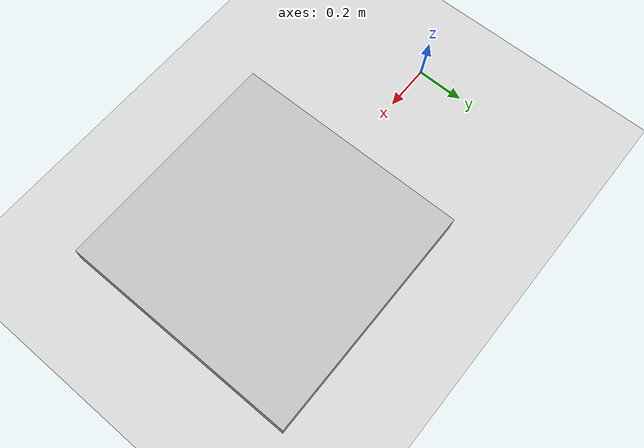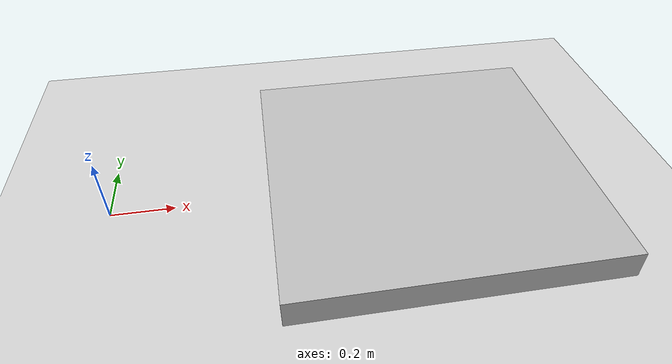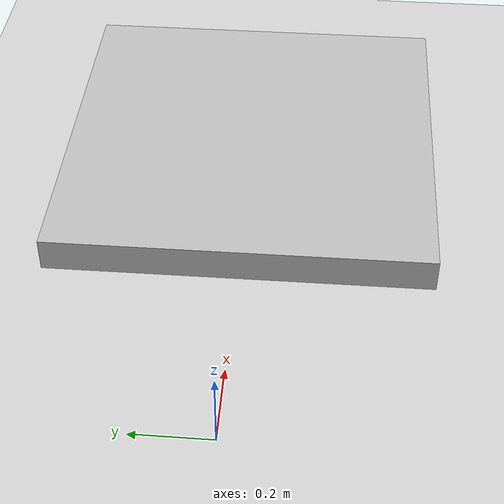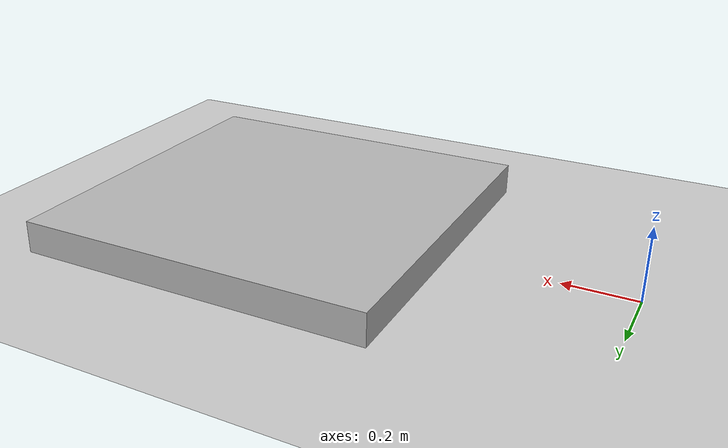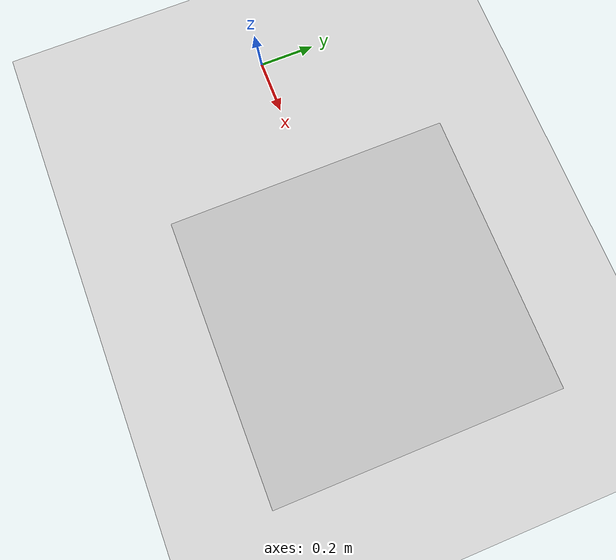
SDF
<?xml version="1.0" encoding="UTF-8"?>
<sdf version='1.4'>
  <world name='default'>
    <gravity>0 0 -9.81</gravity>

    <include>
      <uri>model://sun</uri>
    </include>

    <model name='stair'>
      <link name='link'>
	<pose>1 0 0.045 0 0 0</pose>
	     <!--keti_printed-->

        <collision name='collision'>
          <geometry>
            <box>
		<size>1 1 0.09 </size>
            </box>
          </geometry>

          <surface>
            <friction>
	      <ode>
                <mu>200</mu>
                <mu2>200.</mu2>
                <fdir1>1 0 0</fdir1>
              </ode>
            </friction>
            <contact>
              <ode/>
            </contact>
          </surface>
        </collision>

        <visual name='visual'>
          <geometry>
            <box>
		<size>1 1 0.09 </size>
            </box>
          </geometry>
        </visual>
        <velocity_decay>
          <linear>0</linear>
          <angular>0</angular>
        </velocity_decay>
        <self_collide>0</self_collide>

        <inertial>
          <inertia>
            <ixx>1</ixx>
            <ixy>0</ixy>
            <ixz>0</ixz>
            <iyy>1</iyy>
            <iyz>0</iyz>
            <izz>1</izz>
          </inertia>
          <mass>1000</mass>
        </inertial>
        <kinematic>0</kinematic>
        <gravity>1</gravity>
      </link>

      <pose>0 0 0 0 0 0</pose>
      <static>1</static>
    </model>

    <include>
      <uri>model://ground_plane</uri>
    </include>

  </world>
</sdf>
